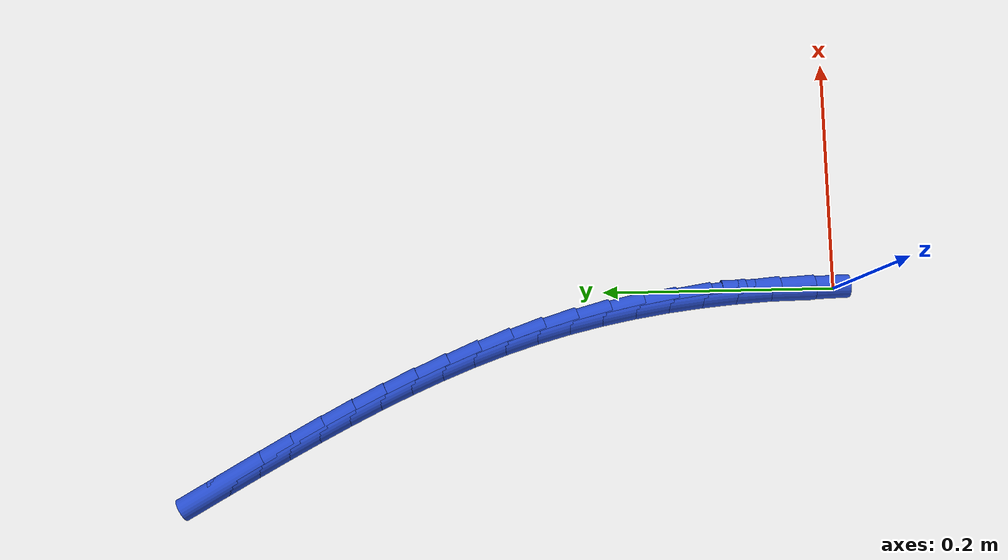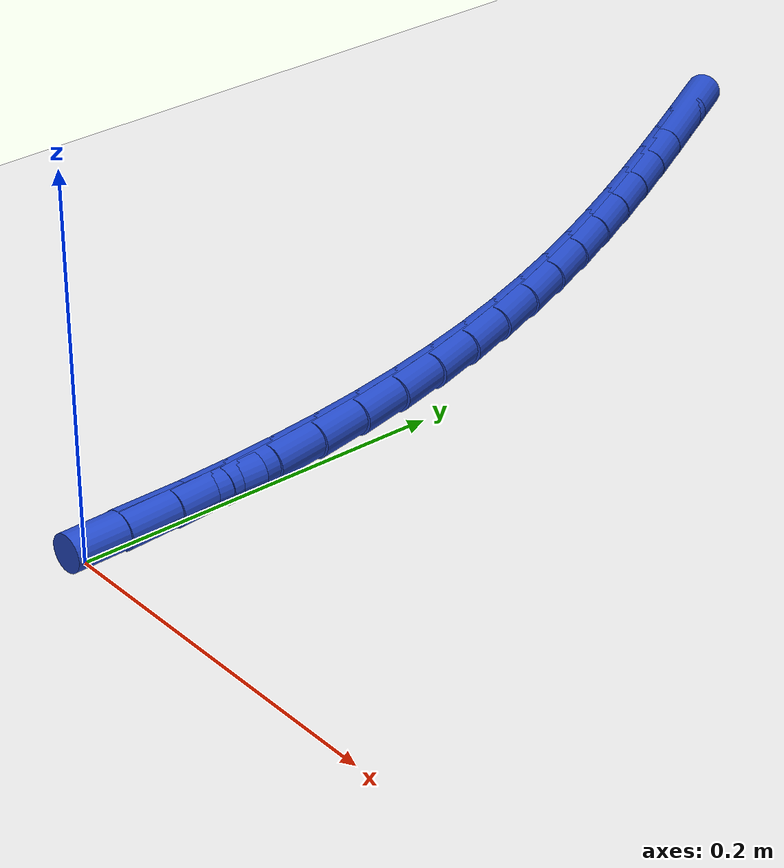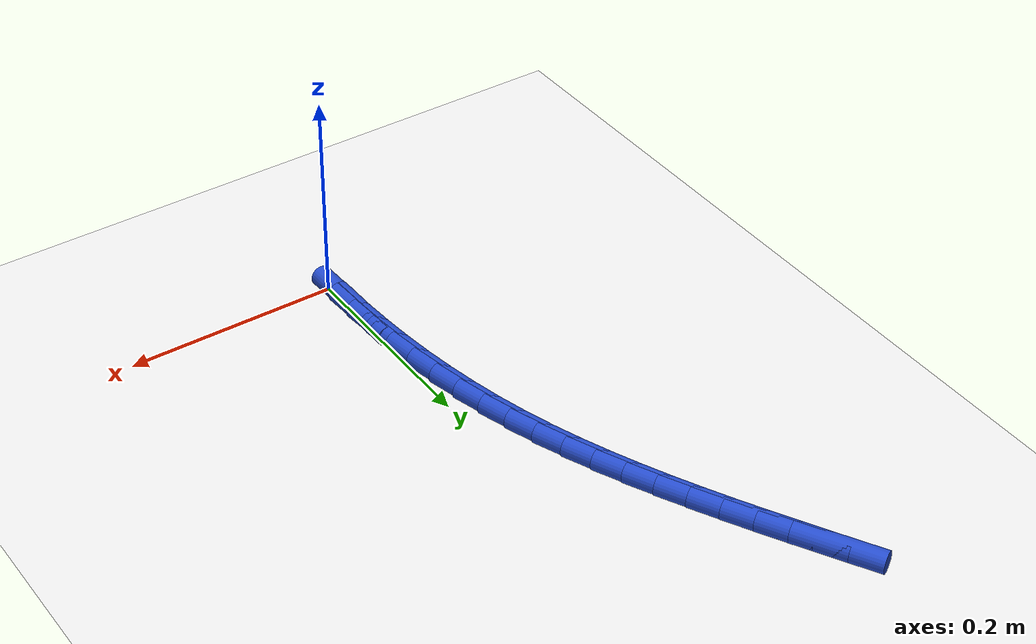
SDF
<sdf version="1.6">
 <world name="default">
  <model name="ground_plane">
   <static>1</static>
   <link name="link">
    <collision name="collision">
     <geometry><plane><normal>0 0 1</normal><size>100 100</size></plane></geometry>
     <surface><friction><ode><mu>100</mu><mu2>50</mu2></ode></friction></surface>
    </collision>
    <visual name="visual">
     <cast_shadows>0</cast_shadows>
     <geometry><plane><normal>0 0 1</normal><size>100 100</size></plane></geometry>
     <material>
      <script><uri>file://media/materials/scripts/gazebo.material</uri><name>Gazebo/WhiteGlow</name></script>
     </material>
    </visual>
   </link>
  </model>
  <model name="line">
   <link name="link_2">
    <pose>-0.0012787325749304562 0.058954068651304745 0.01 0 1.57 -1.5062883083713505</pose>
    <collision name="collision">
     <geometry><cylinder><radius>0.01</radius><length>0.08</length></cylinder></geometry>
    </collision>
    <visual name="visual">
     <material>
      <script><name>Gazebo/Blue</name><uri>file://media/materials/scripts/gazebo.material</uri></script>
     </material>
     <geometry><cylinder><radius>0.01</radius><length>0.08</length></cylinder></geometry>
    </visual>
   </link>
   <link name="link_3">
    <pose>-0.003178094569946696 0.08835702839211973 0.01 0 1.57 -1.475801615378492</pose>
    <collision name="collision">
     <geometry><cylinder><radius>0.01</radius><length>0.08</length></cylinder></geometry>
    </collision>
    <visual name="visual">
     <material>
      <script><name>Gazebo/Blue</name><uri>file://media/materials/scripts/gazebo.material</uri></script>
     </material>
     <geometry><cylinder><radius>0.01</radius><length>0.08</length></cylinder></geometry>
    </visual>
   </link>
   <link name="link_4">
    <pose>-0.005968852759974889 0.11764664354904802 0.01 0 1.57 -1.4437493100206276</pose>
    <collision name="collision">
     <geometry><cylinder><radius>0.01</radius><length>0.08</length></cylinder></geometry>
    </collision>
    <visual name="visual">
     <material>
      <script><name>Gazebo/Blue</name><uri>file://media/materials/scripts/gazebo.material</uri></script>
     </material>
     <geometry><cylinder><radius>0.01</radius><length>0.08</length></cylinder></geometry>
    </visual>
   </link>
   <link name="link_5">
    <pose>-0.009689556437498494 0.1467749429765933 0.01 0 1.57 -1.4100460913188793</pose>
    <collision name="collision">
     <geometry><cylinder><radius>0.01</radius><length>0.08</length></cylinder></geometry>
    </collision>
    <visual name="visual">
     <material>
      <script><name>Gazebo/Blue</name><uri>file://media/materials/scripts/gazebo.material</uri></script>
     </material>
     <geometry><cylinder><radius>0.01</radius><length>0.08</length></cylinder></geometry>
    </visual>
   </link>
   <link name="link_6">
    <pose>-0.014378754895000982 0.17569395552925932 0.01 0 1.57 -1.3746124160555075</pose>
    <collision name="collision">
     <geometry><cylinder><radius>0.01</radius><length>0.08</length></cylinder></geometry>
    </collision>
    <visual name="visual">
     <material>
      <script><name>Gazebo/Blue</name><uri>file://media/materials/scripts/gazebo.material</uri></script>
     </material>
     <geometry><cylinder><radius>0.01</radius><length>0.08</length></cylinder></geometry>
    </visual>
   </link>
   <link name="link_7">
    <pose>-0.020074997424965796 0.20435571006154968 0.01 0 1.57 -1.337377485182759</pose>
    <collision name="collision">
     <geometry><cylinder><radius>0.01</radius><length>0.08</length></cylinder></geometry>
    </collision>
    <visual name="visual">
     <material>
      <script><name>Gazebo/Blue</name><uri>file://media/materials/scripts/gazebo.material</uri></script>
     </material>
     <geometry><cylinder><radius>0.01</radius><length>0.08</length></cylinder></geometry>
    </visual>
   </link>
   <link name="link_8">
    <pose>-0.026816833319876405 0.23271223542796812 0.01 0 1.57 -1.298283107460611</pose>
    <collision name="collision">
     <geometry><cylinder><radius>0.01</radius><length>0.08</length></cylinder></geometry>
    </collision>
    <visual name="visual">
     <material>
      <script><name>Gazebo/Blue</name><uri>file://media/materials/scripts/gazebo.material</uri></script>
     </material>
     <geometry><cylinder><radius>0.01</radius><length>0.08</length></cylinder></geometry>
    </visual>
   </link>
   <link name="link_9">
    <pose>-0.03464280465747828 0.260715564975437 0.01 0 1.57 -1.2583799499070445</pose>
    <collision name="collision">
     <geometry><cylinder><radius>0.01</radius><length>0.08</length></cylinder></geometry>
    </collision>
    <visual name="visual">
     <material>
      <script><name>Gazebo/Blue</name><uri>file://media/materials/scripts/gazebo.material</uri></script>
     </material>
     <geometry><cylinder><radius>0.01</radius><length>0.08</length></cylinder></geometry>
    </visual>
   </link>
   <link name="link_10">
    <pose>-0.04356371488244145 0.28833500413423124 0.01 0 1.57 -1.221281673350799</pose>
    <collision name="collision">
     <geometry><cylinder><radius>0.01</radius><length>0.08</length></cylinder></geometry>
    </collision>
    <visual name="visual">
     <material>
      <script><name>Gazebo/Blue</name><uri>file://media/materials/scripts/gazebo.material</uri></script>
     </material>
     <geometry><cylinder><radius>0.01</radius><length>0.08</length></cylinder></geometry>
    </visual>
   </link>
   <link name="link_11">
    <pose>-0.05349984542358672 0.3155962239024136 0.01 0 1.57 -1.1878240595809395</pose>
    <collision name="collision">
     <geometry><cylinder><radius>0.01</radius><length>0.08</length></cylinder></geometry>
    </collision>
    <visual name="visual">
     <material>
      <script><name>Gazebo/Blue</name><uri>file://media/materials/scripts/gazebo.material</uri></script>
     </material>
     <geometry><cylinder><radius>0.01</radius><length>0.08</length></cylinder></geometry>
    </visual>
   </link>
   <link name="link_12">
    <pose>-0.06435304236888054 0.3425363744573921 0.01 0 1.57 -1.158070794779581</pose>
    <collision name="collision">
     <geometry><cylinder><radius>0.01</radius><length>0.08</length></cylinder></geometry>
    </collision>
    <visual name="visual">
     <material>
      <script><name>Gazebo/Blue</name><uri>file://media/materials/scripts/gazebo.material</uri></script>
     </material>
     <geometry><cylinder><radius>0.01</radius><length>0.08</length></cylinder></geometry>
    </visual>
   </link>
   <link name="link_13">
    <pose>-0.07602515180628931 0.3691926059765749 0.01 0 1.57 -1.132042852908517</pose>
    <collision name="collision">
     <geometry><cylinder><radius>0.01</radius><length>0.08</length></cylinder></geometry>
    </collision>
    <visual name="visual">
     <material>
      <script><name>Gazebo/Blue</name><uri>file://media/materials/scripts/gazebo.material</uri></script>
     </material>
     <geometry><cylinder><radius>0.01</radius><length>0.08</length></cylinder></geometry>
    </visual>
   </link>
   <link name="link_14">
    <pose>-0.08841801982377952 0.3956020686373699 0.01 0 1.57 -1.1097306610585636</pose>
    <collision name="collision">
     <geometry><cylinder><radius>0.01</radius><length>0.08</length></cylinder></geometry>
    </collision>
    <visual name="visual">
     <material>
      <script><name>Gazebo/Blue</name><uri>file://media/materials/scripts/gazebo.material</uri></script>
     </material>
     <geometry><cylinder><radius>0.01</radius><length>0.08</length></cylinder></geometry>
    </visual>
   </link>
   <link name="link_15">
    <pose>-0.10143349250931759 0.4218019126171854 0.01 0 1.57 -1.091105020452687</pose>
    <collision name="collision">
     <geometry><cylinder><radius>0.01</radius><length>0.08</length></cylinder></geometry>
    </collision>
    <visual name="visual">
     <material>
      <script><name>Gazebo/Blue</name><uri>file://media/materials/scripts/gazebo.material</uri></script>
     </material>
     <geometry><cylinder><radius>0.01</radius><length>0.08</length></cylinder></geometry>
    </visual>
   </link>
   <link name="link_16">
    <pose>-0.11497341595087 0.4478292880934293 0.01 0 1.57 -1.076126383886536</pose>
    <collision name="collision">
     <geometry><cylinder><radius>0.01</radius><length>0.08</length></cylinder></geometry>
    </collision>
    <visual name="visual">
     <material>
      <script><name>Gazebo/Blue</name><uri>file://media/materials/scripts/gazebo.material</uri></script>
     </material>
     <geometry><cylinder><radius>0.01</radius><length>0.08</length></cylinder></geometry>
    </visual>
   </link>
   <link name="link_17">
    <pose>-0.12893963623640314 0.4737213452435097 0.01 0 1.57 -1.0647523619161336</pose>
    <collision name="collision">
     <geometry><cylinder><radius>0.01</radius><length>0.08</length></cylinder></geometry>
    </collision>
    <visual name="visual">
     <material>
      <script><name>Gazebo/Blue</name><uri>file://media/materials/scripts/gazebo.material</uri></script>
     </material>
     <geometry><cylinder><radius>0.01</radius><length>0.08</length></cylinder></geometry>
    </visual>
   </link>
   <link name="link_18">
    <pose>-0.14323399945388351 0.49951523424483457 0.01 0 1.57 -1.0569435000491039</pose>
    <collision name="collision">
     <geometry><cylinder><radius>0.01</radius><length>0.08</length></cylinder></geometry>
    </collision>
    <visual name="visual">
     <material>
      <script><name>Gazebo/Blue</name><uri>file://media/materials/scripts/gazebo.material</uri></script>
     </material>
     <geometry><cylinder><radius>0.01</radius><length>0.08</length></cylinder></geometry>
    </visual>
   </link>
   <link name="link_19">
    <pose>-0.15775835169127758 0.5252481052748124 0.01 0 1.57 -1.0526674543015924</pose>
    <collision name="collision">
     <geometry><cylinder><radius>0.01</radius><length>0.08</length></cylinder></geometry>
    </collision>
    <visual name="visual">
     <material>
      <script><name>Gazebo/Blue</name><uri>file://media/materials/scripts/gazebo.material</uri></script>
     </material>
     <geometry><cylinder><radius>0.01</radius><length>0.08</length></cylinder></geometry>
    </visual>
   </link>
   <link name="link_241">
    <pose>-0.00022343104507759493 0.029489157930784472 0.01 0 1.57 -1.537409838064124</pose>
    <collision name="collision">
     <geometry><cylinder><radius>0.01</radius><length>0.08</length></cylinder></geometry>
    </collision>
    <visual name="visual">
     <material>
      <script><name>Gazebo/Blue</name><uri>file://media/materials/scripts/gazebo.material</uri></script>
     </material>
     <geometry><cylinder><radius>0.01</radius><length>0.08</length></cylinder></geometry>
    </visual>
   </link>
   <link name="link_242">
    <pose>-0.0012084410760095227 0.05898144832078807 0.01 0 1.57 -1.5503106985084374</pose>
    <collision name="collision">
     <geometry><cylinder><radius>0.01</radius><length>0.08</length></cylinder></geometry>
    </collision>
    <visual name="visual">
     <material>
      <script><name>Gazebo/Blue</name><uri>file://media/materials/scripts/gazebo.material</uri></script>
     </material>
     <geometry><cylinder><radius>0.01</radius><length>0.08</length></cylinder></geometry>
    </visual>
   </link>
  </model>
 </world>
</sdf>
